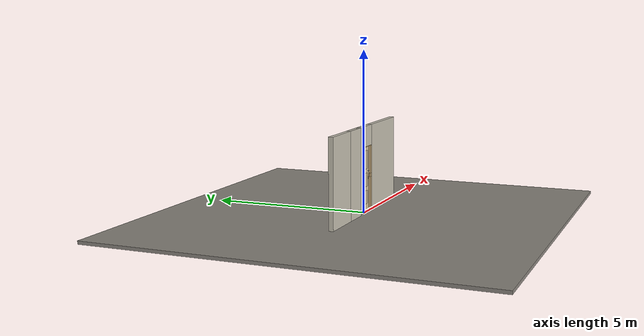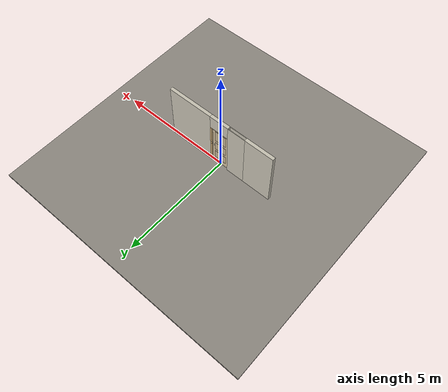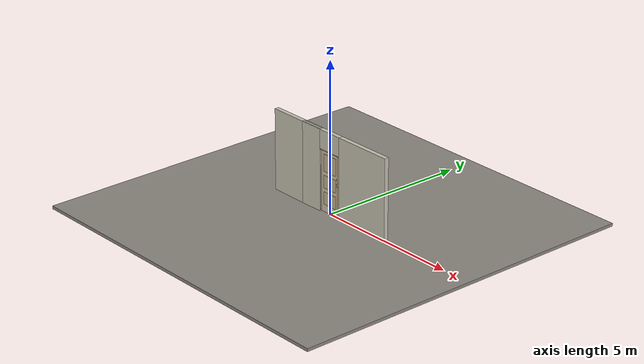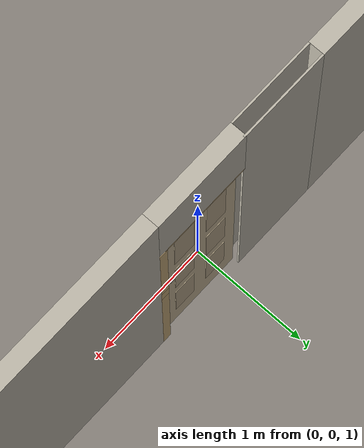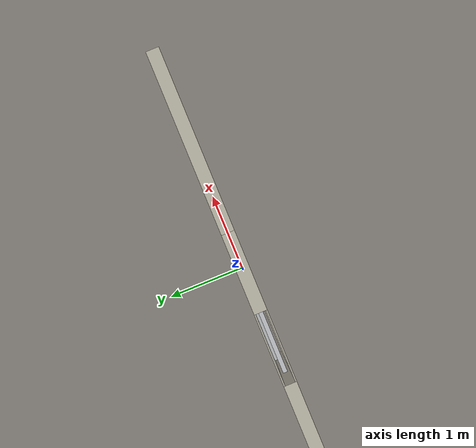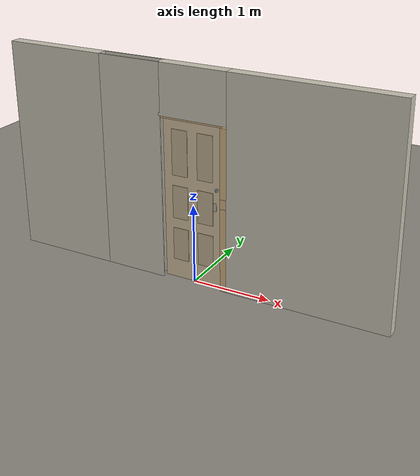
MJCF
<?xml version="1.0" ?>
<mujoco model="db0893_sliding_single_simple">
  <compiler angle="radian" meshdir="../../hardware" texturedir="../../textures" autolimits="true" inertiafromgeom="false"/>
  <option timestep="0.002" integrator="implicitfast" cone="elliptic" impratio="10" noslip_iterations="3">
    <flag multiccd="enable"/>
  </option>
  <size memory="16M"/>
  <default>
    <geom condim="4" solref="0.005 1" solimp="0.95 0.99 0.001"/>
    <joint solreflimit="0.005 1" solimplimit="0.95 0.99 0.001"/>
    <tendon solreflimit="0.005 1"/>
    <equality solref="0.002 1"/>
  </default>
  <visual>
    <headlight ambient="0.4 0.4 0.4" diffuse="0.7 0.7 0.7" specular="0.2 0.2 0.2"/>
    <quality shadowsize="4096"/>
    <map znear="0.01" zfar="60"/>
  </visual>
  <asset>
    <mesh name="thumbturn_eb5c9899a3" file="thumbturn_eb5c9899a3.obj"/>
    <material name="mat_floor" rgba="0.55 0.53 0.5 1" specular="0.2" shininess="0.15" reflectance="0"/>
    <material name="mat_wall" rgba="0.78 0.76 0.7 1" specular="0.2" shininess="0.1" reflectance="0"/>
    <material name="mat_frame" rgba="0.82 0.7 0.5 1" specular="0.2" shininess="0.45" reflectance="0"/>
    <material name="mat_track" rgba="0.8 0.81 0.83 1" specular="0.8" shininess="0.6" reflectance="0.4"/>
    <material name="mat_leaf" rgba="0.82 0.75 0.62 1" specular="0.2" shininess="0.51" reflectance="0"/>
    <material name="mat_leaf_panel" rgba="0.754 0.69 0.57 1" specular="0.2" shininess="0.51" reflectance="0"/>
    <material name="mat_roller" rgba="0.65 0.66 0.68 1" specular="0.74" shininess="0.5" reflectance="0.36"/>
    <material name="mat_op_nickel_satin" rgba="0.72 0.7 0.66 1" specular="0.8" shininess="0.65" reflectance="0.4"/>
    <material name="mat_hook" rgba="0.75 0.76 0.77 1" specular="0.8" shininess="0.65" reflectance="0.4"/>
    <texture name="skybox" type="skybox" builtin="gradient" rgb1="0.6 0.7 0.85" rgb2="0.9 0.92 0.95" width="256" height="256"/>
  </asset>
  <worldbody>
    <light name="sun" pos="1.5 -2.5 4" dir="-0.3 0.5 -0.8" directional="true" diffuse="0.8 0.8 0.8" specular="0.3 0.3 0.3" castshadow="true"/>
    <light name="fill" pos="-1.5 2.5 3" dir="0.3 -0.5 -0.7" directional="true" diffuse="0.35 0.35 0.4" castshadow="false"/>
    <camera name="robot_view" pos="0 -2.54875 1.73965" xyaxes="1 0 0 0 0.26963 0.962964" fovy="52"/>
    <camera name="far_view" pos="0 2.54875 1.73965" xyaxes="-1 0 0 0 -0.26963 0.962964" fovy="52"/>
    <camera name="iso" pos="1.93705 -2.14095 2.14745" xyaxes="0.741536 0.670913 0 -0.242917 0.268487 0.932151" fovy="46"/>
    <camera name="detail_handle" pos="0.471 -0.8175 1.33" xyaxes="0.97561 0.219512 0 -0.070934 0.315262 0.94635" fovy="38"/>
    <geom name="floor" type="box" size="6 6 0.05" pos="0 0 -0.05" material="mat_floor" group="0" contype="1" conaffinity="1" friction="0.8 0.005 0.0001" density="2400"/>
    <geom name="wall_right" type="box" size="1.015 0.0725 1.35" pos="1.485 0 1.35" material="mat_wall" group="0" contype="1" conaffinity="1" friction="0.6 0.005 0.0001" density="800"/>
    <geom name="wall_header" type="box" size="0.44 0.0725 0.3145" pos="0.03 0 2.3855" material="mat_wall" group="0" contype="1" conaffinity="1" friction="0.6 0.005 0.0001" density="800"/>
    <geom name="pocket_skin_n" type="box" size="0.406 0.008 1.35" pos="-0.797 -0.0645 1.35" material="mat_wall" group="0" contype="1" conaffinity="1" friction="0.6 0.005 0.0001" density="800"/>
    <geom name="pocket_skin_p" type="box" size="0.406 0.008 1.35" pos="-0.797 0.0645 1.35" material="mat_wall" group="0" contype="1" conaffinity="1" friction="0.6 0.005 0.0001" density="800"/>
    <geom name="wall_pocket_far" type="box" size="0.6485 0.0725 1.35" pos="-1.8515 0 1.35" material="mat_wall" group="0" contype="1" conaffinity="1" friction="0.6 0.005 0.0001" density="800"/>
    <geom name="jamb_head" type="box" size="0.41 0.0725 0.0095" pos="0 0 2.0615" material="mat_frame" group="0" contype="1" conaffinity="1" friction="0.6 0.005 0.0001" density="300"/>
    <geom name="track_header" type="box" size="0.793 0.025 0.04" pos="-0.362 0 2.111" material="mat_track" group="0" contype="1" conaffinity="1" friction="0.6 0.005 0.0001" density="2700"/>
    <geom name="leaf_hook_keeper" type="box" size="0.008 0.015 0.006" pos="0.399 0 1.13" material="mat_hook" group="0" contype="1" conaffinity="1" friction="0.6 0.005 0.0001" density="7900"/>
    <geom name="jamb_latch_pwall_1130_n" type="box" size="0.0395 0.0245 0.06" pos="0.4305 -0.048 1.13" material="mat_frame" group="0" contype="1" conaffinity="1" friction="0.6 0.005 0.0001" density="300"/>
    <geom name="jamb_latch_pwall_1130_p" type="box" size="0.0395 0.0245 0.06" pos="0.4305 0.048 1.13" material="mat_frame" group="0" contype="1" conaffinity="1" friction="0.6 0.005 0.0001" density="300"/>
    <geom name="jamb_latch_pback_1130" type="box" size="0.004 0.0235 0.06" pos="0.466 0 1.13" material="mat_frame" group="0" contype="1" conaffinity="1" friction="0.6 0.005 0.0001" density="300"/>
    <geom name="jamb_latch_0" type="box" size="0.0395 0.0725 0.535" pos="0.4305 0 0.535" material="mat_frame" group="0" contype="1" conaffinity="1" friction="0.6 0.005 0.0001" density="300"/>
    <geom name="jamb_latch_1" type="box" size="0.0395 0.0725 0.431" pos="0.4305 0 1.621" material="mat_frame" group="0" contype="1" conaffinity="1" friction="0.6 0.005 0.0001" density="300"/>
    <geom name="leaf_hook_keeper_plate_b" type="box" size="0.0295 0.003 0.0005" pos="0.3905 0 1.067" quat="-0.5 -0.5 0.5 0.5" material="mat_hook" group="1" contype="0" conaffinity="0" density="7800"/>
    <geom name="leaf_hook_keeper_plate_l" type="box" size="0.003 0.06 0.0005" pos="0.3905 0.0265 1.13" quat="-0.5 -0.5 0.5 0.5" material="mat_hook" group="1" contype="0" conaffinity="0" density="7800"/>
    <geom name="leaf_hook_keeper_plate_t" type="box" size="0.0295 0.003 0.0005" pos="0.3905 0 1.193" quat="-0.5 -0.5 0.5 0.5" material="mat_hook" group="1" contype="0" conaffinity="0" density="7800"/>
    <geom name="leaf_hook_keeper_plate_r" type="box" size="0.003 0.06 0.0005" pos="0.3905 -0.0265 1.13" quat="-0.5 -0.5 0.5 0.5" material="mat_hook" group="1" contype="0" conaffinity="0" density="7800"/>
    <geom name="track_header_bracket" type="box" size="0.6344 0.01625 0.032" pos="-0.362 0.04075 2.111" material="mat_hook" group="1" contype="0" conaffinity="0" density="7850"/>
    <geom name="leaf_hook_keeper_bracket" type="box" size="0.0064 0.00475 0.005" pos="0.399 0.01925 1.13" material="mat_hook" group="1" contype="0" conaffinity="0" density="7850"/>
    <site name="approach_point" pos="0 -1.5 0" quat="1 0 0 0" size="0.05" rgba="0.2 0.9 0.2 0.5" group="4"/>
    <site name="goal_point" pos="0 1.5 0" quat="1 0 0 0" size="0.05" rgba="0.2 0.9 0.2 0.5" group="4"/>
    <site name="door_plane_center" pos="0 0 1.026" quat="1 0 0 0" size="0.02" rgba="0.2 0.9 0.2 0.5" group="4"/>
    <body name="leaf" pos="0 0 0">
      <inertial pos="0.000281 0 1.028074" mass="35.970225" quat="0.499981 -0.499981 0.500019 0.500019" diaginertia="1.746233186 12.370209251 14.109091887"/>
      <joint name="leaf_slide" type="slide" axis="-1 0 0" limited="true" range="0 0.724" damping="3.811061" frictionloss="14.91877" armature="0.5"/>
      <geom name="leaf_slab" type="box" size="0.381 0.0175 1.016" pos="0 0 1.028" material="mat_leaf" group="0" contype="1" conaffinity="1" friction="0.4 0.005 0.0001" density="1"/>
      <geom name="leaf_panel_0_n" type="box" size="0.103 0.003 0.209032" pos="-0.168 -0.0205 0.464552" material="mat_leaf_panel" group="1" contype="0" conaffinity="0" density="1"/>
      <geom name="leaf_panel_0_p" type="box" size="0.103 0.003 0.209032" pos="-0.168 0.0205 0.464552" material="mat_leaf_panel" group="1" contype="0" conaffinity="0" density="1"/>
      <geom name="leaf_panel_1_n" type="box" size="0.103 0.003 0.209032" pos="0.168 -0.0205 0.464552" material="mat_leaf_panel" group="1" contype="0" conaffinity="0" density="1"/>
      <geom name="leaf_panel_1_p" type="box" size="0.103 0.003 0.209032" pos="0.168 0.0205 0.464552" material="mat_leaf_panel" group="1" contype="0" conaffinity="0" density="1"/>
      <geom name="leaf_panel_2_n" type="box" size="0.103 0.003 0.209032" pos="-0.168 -0.0205 1.012616" material="mat_leaf_panel" group="1" contype="0" conaffinity="0" density="1"/>
      <geom name="leaf_panel_2_p" type="box" size="0.103 0.003 0.209032" pos="-0.168 0.0205 1.012616" material="mat_leaf_panel" group="1" contype="0" conaffinity="0" density="1"/>
      <geom name="leaf_panel_3_n" type="box" size="0.103 0.003 0.209032" pos="0.168 -0.0205 1.012616" material="mat_leaf_panel" group="1" contype="0" conaffinity="0" density="1"/>
      <geom name="leaf_panel_3_p" type="box" size="0.103 0.003 0.209032" pos="0.168 0.0205 1.012616" material="mat_leaf_panel" group="1" contype="0" conaffinity="0" density="1"/>
      <geom name="leaf_panel_4_n" type="box" size="0.103 0.003 0.285376" pos="-0.168 -0.0205 1.637024" material="mat_leaf_panel" group="1" contype="0" conaffinity="0" density="1"/>
      <geom name="leaf_panel_4_p" type="box" size="0.103 0.003 0.285376" pos="-0.168 0.0205 1.637024" material="mat_leaf_panel" group="1" contype="0" conaffinity="0" density="1"/>
      <geom name="leaf_panel_5_n" type="box" size="0.103 0.003 0.285376" pos="0.168 -0.0205 1.637024" material="mat_leaf_panel" group="1" contype="0" conaffinity="0" density="1"/>
      <geom name="leaf_panel_5_p" type="box" size="0.103 0.003 0.285376" pos="0.168 0.0205 1.637024" material="mat_leaf_panel" group="1" contype="0" conaffinity="0" density="1"/>
      <geom name="leaf_pull_n" type="box" size="0.025 0.0005 0.05" pos="0.291 -0.018 1.05" material="mat_op_nickel_satin" group="1" contype="0" conaffinity="0" density="1000"/>
      <geom name="leaf_pull_p" type="box" size="0.025 0.0005 0.05" pos="0.291 0.018 1.05" material="mat_op_nickel_satin" group="1" contype="0" conaffinity="0" density="1000"/>
      <geom name="leaf_hook_faceplate" type="box" size="0.0006 0.011 0.045" pos="0.3804 0 1.13" material="mat_hook" group="1" contype="0" conaffinity="0" density="7900"/>
      <site name="leaf_pull_grip_n" pos="0.291 -0.0175 1.05" quat="1 0 0 0" size="0.012" rgba="0.2 0.9 0.2 0.5" group="4"/>
      <site name="leaf_pull_grip_p" pos="0.291 0.0175 1.05" quat="1 0 0 0" size="0.012" rgba="0.2 0.9 0.2 0.5" group="4"/>
      <site name="leaf_edge_mid" pos="0.381 0 1.028" quat="1 0 0 0" size="0.02" rgba="0.2 0.9 0.2 0.5" group="4"/>
      <body name="leaf_hook_thumbturn" pos="0.321 -0.0175 1.27">
        <inertial pos="0 -0.012928 0" mass="0.178946" quat="0.5 0.5 0.5 0.5" diaginertia="0.000026045 0.000026215 0.000032438"/>
        <joint name="leaf_hook_thumbturn_hinge" type="hinge" axis="0 1 0" limited="true" range="0 1" damping="0.05" frictionloss="0.25" armature="0.005"/>
        <geom name="leaf_hook_tt_mesh" type="mesh" mesh="thumbturn_eb5c9899a3" pos="0 0 0" quat="0.707107 0.707107 0 0" material="mat_hook" group="0" contype="1" conaffinity="1" friction="0.6 0.005 0.0001" density="7100"/>
        <geom name="leaf_hook_tt_col" type="box" size="0.006 0.012 0.016" pos="0 -0.02 0" material="mat_hook" group="3" contype="1" conaffinity="1" rgba="0.8 0.3 0.3 0.25" friction="0.6 0.005 0.0001" density="7100"/>
        <site name="leaf_hook_tt_grip" pos="0 -0.03 0" quat="1 0 0 0" size="0.01" rgba="0.2 0.9 0.2 0.5" group="4"/>
      </body>
      <body name="leaf_hook" pos="0.381 0 1.13">
        <inertial pos="0.026737 0 -0.009263" mass="0.072048" quat="0.200817 -0.200817 0.677991 0.677991" diaginertia="0.000005266 0.00001511 0.000019175"/>
        <joint name="leaf_hook_hinge" type="hinge" axis="0 1 0" limited="true" range="0 1" damping="0.05" frictionloss="0.1" armature="0.005"/>
        <geom name="leaf_hook_arm" type="box" size="0.022 0.005 0.006" pos="0.02 0 -0.016" material="mat_hook" group="0" contype="1" conaffinity="1" friction="0.6 0.005 0.0001" density="7900"/>
        <geom name="leaf_hook_tip" type="box" size="0.006 0.005 0.016" pos="0.036 0 0" material="mat_hook" group="0" contype="1" conaffinity="1" friction="0.6 0.005 0.0001" density="7900"/>
      </body>
    </body>
  </worldbody>
  <equality>
    <joint name="leaf_hook_couple" joint1="leaf_hook_hinge" joint2="leaf_hook_thumbturn_hinge" polycoef="0 1 0 0 0" active="true"/>
  </equality>
  <sensor>
    <jointpos name="leaf_slide_pos" joint="leaf_slide"/>
    <jointvel name="leaf_slide_vel" joint="leaf_slide"/>
    <jointpos name="leaf_hook_thumbturn_hinge_pos" joint="leaf_hook_thumbturn_hinge"/>
    <jointvel name="leaf_hook_thumbturn_hinge_vel" joint="leaf_hook_thumbturn_hinge"/>
    <jointpos name="leaf_hook_hinge_pos" joint="leaf_hook_hinge"/>
    <jointvel name="leaf_hook_hinge_vel" joint="leaf_hook_hinge"/>
  </sensor>
</mujoco>
